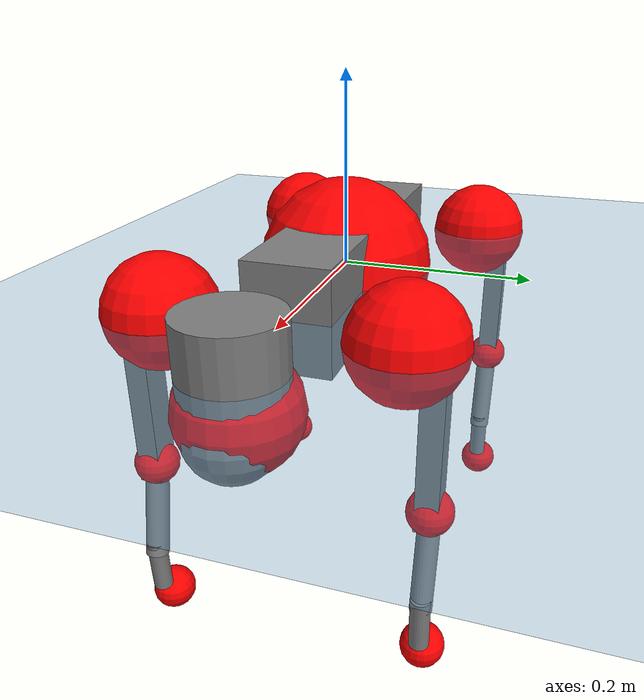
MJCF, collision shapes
<mujoco model="go2">
  <compiler angle="radian" assetdir="assets" balanceinertia="true" inertiafromgeom="false"/>

  <option timestep="0.005" density="1.2" viscosity="2e-05"/>

  <size nkey="1"/>

  <visual>
    <quality shadowsize="8192"/>
    <map shadowclip="0.5"/>
  </visual>

  <default>
    <default class="/">
      <geom contype="0" conaffinity="0" group="1" solref="-1000 -80"/>
      <site size="0.01 0.005 0.005" group="5"/>
      <general forcelimited="true" biastype="affine" gainprm="20" biasprm="0 -20 -0.5"/>
      <default class="go2">
        <joint armature="0.01" damping="0.01" frictionloss="0.2"/>
        <geom condim="1" margin="0.001"/>
        <default class="visual">
          <geom type="mesh" group="2"/>
        </default>
        <default class="collision">
          <geom group="3"/>
          <default class="foot">
            <geom size="0.022 0 0" condim="6" priority="1" friction="0.8 0.02 0.01" solimp="0.015 1 0.022"/>
          </default>
        </default>
        <default class="reward_collision_sphere">
          <geom group="5" rgba="1 0 0 1"/>
        </default>
      </default>
    </default>
  </default>

  <asset>
    <texture type="skybox" colorspace="auto" name="//unnamed_texture_0" builtin="gradient" rgb1="0.95 0.95 0.95" rgb2="0.95 0.95 0.95" width="100" height="600"/>
    <texture type="2d" colorspace="auto" name="texplane" builtin="checker" rgb1="0.345 0.575 0.748" rgb2="0.345 0.575 0.748" markrgb="1 1 1" width="512" height="512"/>
    <material name="MatPlane" class="/" texture="texplane" texuniform="true" texrepeat="2 2" specular="0.9"/>
    <material name="metal" class="/" rgba="0.9 0.95 0.95 1"/>
    <material name="black" class="/" rgba="0 0 0 1"/>
    <material name="white" class="/"/>
    <material name="gray" class="/" rgba="0.671705 0.692426 0.77427 1"/>
    <mesh name="base_0" class="/" file="base_0.obj"/>
    <mesh name="base_1" class="/" file="base_1.obj"/>
    <mesh name="base_2" class="/" file="base_2.obj"/>
    <mesh name="base_3" class="/" file="base_3.obj"/>
    <mesh name="base_4" class="/" file="base_4.obj"/>
    <mesh name="hip_0" class="/" file="hip_0.obj"/>
    <mesh name="hip_1" class="/" file="hip_1.obj"/>
    <mesh name="thigh_0" class="/" file="thigh_0.obj"/>
    <mesh name="thigh_1" class="/" file="thigh_1.obj"/>
    <mesh name="thigh_mirror_0" class="/" file="thigh_mirror_0.obj"/>
    <mesh name="thigh_mirror_1" class="/" file="thigh_mirror_1.obj"/>
    <mesh name="calf_0" class="/" file="calf_0.obj"/>
    <mesh name="calf_1" class="/" file="calf_1.obj"/>
    <mesh name="calf_mirror_0" class="/" file="calf_mirror_0.obj"/>
    <mesh name="calf_mirror_1" class="/" file="calf_mirror_1.obj"/>
    <mesh name="foot" class="/" file="foot.obj"/>
  </asset>

  <worldbody>
    <geom name="floor" class="/" size="100 100 0.125" type="plane" group="0" material="MatPlane"/>
    <light name="toplight_shadow" class="/" pos="0 0 5" dir="0.0990148 0.0990148 -0.990148" type="directional" ambient="0.04 0.04 0.04" diffuse="0.55 0.55 0.55" specular="0.12 0.12 0.12"/>
    <light name="toplight_fill" class="/" pos="0 0 5" dir="0.0990148 0.0990148 -0.990148" type="directional" castshadow="false" ambient="0.04 0.04 0.04" diffuse="0.3 0.3 0.3" specular="0.08 0.08 0.08"/>
    <body name="trunk" childclass="go2" pos="0.000917504 0.000223836 -0.00102213" quat="1 -0.000230072 -6.85996e-05 0.000246976">
      <inertial pos="0.0182356 -0.00204671 -0.00349896" quat="0.00100485 0.714694 0.000892405 0.699436" mass="5.8612" diaginertia="0.104847 0.102237 0.0082343"/>
      <joint name="//unnamed_joint_0" type="free" armature="0" damping="0" frictionloss="0"/>
      <geom name="//unnamed_geom_1" class="visual" material="black" mesh="base_0"/>
      <geom name="//unnamed_geom_2" class="visual" material="black" mesh="base_1"/>
      <geom name="//unnamed_geom_3" class="visual" material="black" mesh="base_2"/>
      <geom name="//unnamed_geom_4" class="visual" material="white" mesh="base_3"/>
      <geom name="//unnamed_geom_5" class="visual" material="gray" mesh="base_4"/>
      <geom name="trunk_1" class="collision" size="0.175873 0.0437111 0.0532948" type="box"/>
      <geom name="trunk_2" class="collision" size="0.0467498 0.0420748" pos="0.283374 0 0.00804266" type="cylinder"/>
      <geom name="trunk_3" class="collision" size="0.0439448" pos="0.291328 0 -0.0482559"/>
      <geom name="//unnamed_geom_9" class="reward_collision_sphere" size="0.0934996"/>
      <geom name="//unnamed_geom_10" class="reward_collision_sphere" size="0.0560998" pos="0.278402 0 -0.0361919"/>
      <site name="imu" pos="-0.0140735 -0.000592979 0.0227543" size="0.00934996"/>
      <camera name="track" pos="0 -2.01286 0" quat="0.707107 0.707107 0 0" mode="trackcom"/>
      <camera name="ego_camera" pos="0.310219 0 0.0361919" quat="-0.5 -0.5 0.5 0.5"/>
      <body name="FL_hip" pos="0.190198 0.0454686 0.000673892" quat="1 -2.38289e-05 -9.64533e-05 3.26698e-05">
        <inertial pos="-0.00522099 0.00116682 -0.000695764" quat="0.497248 0.499646 0.505099 0.49797" mass="0.534244" diaginertia="0.000828263 0.000584019 0.000156562"/>
        <joint name="FL_hip_joint" pos="0 0 0" axis="1 -0.000346877 -6.62873e-05" range="-1.04999 1.03247" armature="0.00945084" damping="0.0044784" frictionloss="0.181152"/>
        <geom name="//unnamed_geom_11" class="visual" material="metal" mesh="hip_0"/>
        <geom name="//unnamed_geom_12" class="visual" material="gray" mesh="hip_1"/>
        <geom name="//unnamed_geom_13" class="collision" size="0.0430098 0.0186999" pos="0 0.0805144 0" quat="0.707107 0.707107 0 0" type="cylinder"/>
        <geom name="//unnamed_geom_14" class="reward_collision_sphere" size="0.0560998" pos="0 0.0704501 0"/>
        <body name="FL_thigh" pos="-0.000900297 0.0979411 0.00181202" quat="0.999999 -0.000521448 -9.32544e-05 0.000875311">
          <inertial pos="-0.00377926 -0.022351 -0.0263212" quat="0.830812 0.090727 -0.0209182 0.54871" mass="0.92516" diaginertia="0.00575222 0.00580428 0.00028994"/>
          <joint name="FL_thigh_joint" pos="0 0 0" axis="-0.00619263 0.999951 0.00772416" stiffness="0.00393022" range="-1.5279 3.50438" armature="0.00978374" damping="0.0115687" frictionloss="0.186989"/>
          <geom name="//unnamed_geom_15" class="visual" material="metal" mesh="thigh_0"/>
          <geom name="//unnamed_geom_16" class="visual" material="gray" mesh="thigh_1"/>
          <geom name="//unnamed_geom_17" class="collision" size="0.0995771 0.0114537 0.0158949" pos="0 0 -0.0856543" quat="0.707107 0 0.707107 0" type="box"/>
          <body name="FL_calf" pos="-0.000695473 0.000938712 -0.171192" quat="1 -0.000151724 -5.89099e-05 0.000122637">
            <inertial pos="0.00669125 -0.00123154 -0.112874" quat="0.710411 0.00122194 -0.00564468 0.703763" mass="0.197649" diaginertia="0.00142251 0.00152609 1.78133e-05"/>
            <joint name="FL_calf_joint" pos="0 0 0" axis="-0.00412186 0.999981 0.00468544" range="-2.71384 -0.843948" armature="0.00888552" damping="0.00138358" frictionloss="0.184078"/>
            <geom name="//unnamed_geom_18" class="visual" material="gray" mesh="calf_0"/>
            <geom name="//unnamed_geom_19" class="visual" material="black" mesh="calf_1"/>
            <geom name="FL_calf0" class="collision" size="0.01122 0.0560998" pos="0.00795434 0 -0.0482559" quat="0.994493 0 -0.104807 0" type="cylinder"/>
            <geom name="//unnamed_geom_21" class="collision" size="0.010285 0.0303874" pos="0.0198859 0 -0.119031" quat="0.999688 0 0.0249974 0" type="cylinder"/>
            <geom name="//unnamed_geom_22" class="visual" pos="0 0 -0.171309" quat="1 0 0 0" material="black" mesh="foot"/>
            <geom name="FL_foot" class="foot" size="0.0172349" pos="-0.00198859 0 -0.171309"/>
            <geom name="//unnamed_geom_24" class="reward_collision_sphere" size="0.0233749"/>
            <geom name="//unnamed_geom_25" class="reward_collision_sphere" size="0.0233749" pos="-0.00198859 0 -0.171309"/>
            <site name="FL_foot" class="foot" pos="-0.00198859 0 -0.171309" size="0.00934996"/>
          </body>
        </body>
      </body>
      <body name="FR_hip" pos="0.19057 -0.0477579 0.000841434" quat="1 -3.80347e-05 1.6585e-05 2.88528e-05">
        <inertial pos="-0.00546305 -0.00435524 -0.0009941" quat="0.504311 0.506826 0.501984 0.486632" mass="0.549066" diaginertia="0.000841252 0.000631071 0.000158707"/>
        <joint name="FR_hip_joint" pos="0 0 0" axis="0.99994 0.00947603 -0.00545194" range="-1.05648 1.05557" armature="0.00937791" damping="0.00247669" frictionloss="0.177912"/>
        <geom name="//unnamed_geom_26" class="visual" pos="0 1.76117e-09 7.55403e-08" quat="4.63268e-05 1 0 0" material="metal" mesh="hip_0"/>
        <geom name="//unnamed_geom_27" class="visual" pos="0 2.85507e-09 -1.8684e-07" quat="4.63268e-05 1 0 0" material="gray" mesh="hip_1"/>
        <geom name="//unnamed_geom_28" class="collision" size="0.0430098 0.0186999" pos="0 -0.0805144 0" quat="0.707107 0.707107 0 0" type="cylinder"/>
        <geom name="//unnamed_geom_29" class="reward_collision_sphere" size="0.0560998" pos="0 -0.0704501 0"/>
        <body name="FR_thigh" pos="0.000295355 -0.0967787 -0.00166572" quat="1 0.000412655 -0.000791791 0.000220392">
          <inertial pos="-0.00133835 0.0235579 -0.0262588" quat="0.55144 -0.0204035 0.0852752 0.829593" mass="0.963428" diaginertia="0.005784 0.00593511 0.000305807"/>
          <joint name="FR_thigh_joint" pos="0 0 0" axis="0.00229445 -0.999994 0.00258476" range="-3.51206 1.58388" armature="0.00913411" damping="0.00916343" frictionloss="0.17959"/>
          <geom name="//unnamed_geom_30" class="visual" material="metal" mesh="thigh_mirror_0"/>
          <geom name="//unnamed_geom_31" class="visual" material="gray" mesh="thigh_mirror_1"/>
          <geom name="//unnamed_geom_32" class="collision" size="0.0995771 0.0114537 0.0158949" pos="0 0 -0.0856543" quat="0.707107 0 0.707107 0" type="box"/>
          <body name="FR_calf" pos="1.99812e-05 4.97908e-05 -0.170134" quat="1 -2.01408e-05 5.33934e-05 -4.50457e-05">
            <inertial pos="0.00496901 0.000774746 -0.114124" quat="0.698174 -0.0143119 0.00174214 0.715783" mass="0.200976" diaginertia="0.00145788 0.00155003 1.81924e-05"/>
            <joint name="FR_calf_joint" pos="0 0 0" axis="0.00112055 -0.999999 -0.000123474" range="0.790265 2.7203" armature="0.0101256" damping="0.019274" frictionloss="0.180759"/>
            <geom name="//unnamed_geom_33" class="visual" material="gray" mesh="calf_mirror_0"/>
            <geom name="//unnamed_geom_34" class="visual" material="black" mesh="calf_mirror_1"/>
            <geom name="FR_calf0" class="collision" size="0.0121549 0.0560998" pos="0.00994293 0 -0.0482559" quat="0.995004 0 -0.0998334 0" type="cylinder"/>
            <geom name="//unnamed_geom_36" class="collision" size="0.010285 0.0303874" pos="0.0198859 0 -0.119031" quat="0.999688 0 0.0249974 0" type="cylinder"/>
            <geom name="//unnamed_geom_37" class="visual" pos="0 0 -0.171309" quat="1 0 0 0" material="black" mesh="foot"/>
            <geom name="FR_foot" class="foot" size="0.0215079" pos="-0.00198859 0 -0.171309"/>
            <geom name="//unnamed_geom_39" class="reward_collision_sphere" size="0.0233749"/>
            <geom name="//unnamed_geom_40" class="reward_collision_sphere" size="0.0233749" pos="-0.00198859 0 -0.171309"/>
            <site name="FR_foot" class="foot" pos="-0.00198859 0 -0.171309" size="0.00934996"/>
          </body>
        </body>
      </body>
      <body name="RL_hip" pos="-0.190221 0.04672 -0.00279424" quat="1 5.92198e-05 -4.27235e-05 0.000293996">
        <inertial pos="0.00542721 0.00298208 -0.00209168" quat="0.50721 0.503466 0.493515 0.495685" mass="0.569776" diaginertia="0.000912777 0.000639036 0.000166667"/>
        <joint name="RL_hip_joint" pos="0 0 0" axis="-0.99986 -0.000333776 -0.0167076" stiffness="0.00251073" range="-1.04189 1.02626" armature="0.00922344" damping="0" frictionloss="0.18581"/>
        <geom name="//unnamed_geom_41" class="visual" pos="-1.65544e-09 0 -3.24505e-07" quat="4.63268e-05 0 1 0" material="metal" mesh="hip_0"/>
        <geom name="//unnamed_geom_42" class="visual" pos="-2.68367e-09 0 -2.87789e-07" quat="4.63268e-05 0 1 0" material="gray" mesh="hip_1"/>
        <geom name="//unnamed_geom_43" class="collision" size="0.0430098 0.0186999" pos="0 0.0805144 0" quat="0.707107 0.707107 0 0" type="cylinder"/>
        <geom name="//unnamed_geom_44" class="reward_collision_sphere" size="0.0560998" pos="0 0.0704501 0"/>
        <body name="RL_thigh" pos="-0.000153077 0.0971942 -0.000316885" quat="1 0.00036858 -0.000130413 0.000318533">
          <inertial pos="-0.00616456 -0.023324 -0.0287964" quat="0.829365 0.0853597 -0.0215798 0.551727" mass="0.94132" diaginertia="0.00553881 0.00602938 0.000288909"/>
          <joint name="RL_thigh_joint" pos="0 0 0" axis="-0.00845895 0.99996 0.00304985" stiffness="0.0138225" range="-0.514748 4.52474" armature="0.00908826" damping="0" frictionloss="0.187256"/>
          <geom name="//unnamed_geom_45" class="visual" material="metal" mesh="thigh_0"/>
          <geom name="//unnamed_geom_46" class="visual" material="gray" mesh="thigh_1"/>
          <geom name="//unnamed_geom_47" class="collision" size="0.0995771 0.0114537 0.0158949" pos="0 0 -0.0856543" quat="0.707107 0 0.707107 0" type="box"/>
          <body name="RL_calf" pos="0.000832689 -0.000676997 -0.170261" quat="1 9.55207e-06 5.27084e-05 -4.12798e-05">
            <inertial pos="0.00587034 0.00157863 -0.112546" quat="0.710463 0.00331193 -0.00404804 0.703715" mass="0.203871" diaginertia="0.00148157 0.00159682 1.82149e-05"/>
            <joint name="RL_calf_joint" pos="0 0 0" axis="-0.00513336 0.999895 -0.0135276" range="-2.68408 -0.855104" armature="0.010395" damping="0.0122731" frictionloss="0.171546"/>
            <geom name="//unnamed_geom_48" class="visual" material="gray" mesh="calf_0"/>
            <geom name="//unnamed_geom_49" class="visual" material="black" mesh="calf_1"/>
            <geom name="RL_calf0" class="collision" size="0.0121549 0.0560998" pos="0.00994293 0 -0.0482559" quat="0.995004 0 -0.0998334 0" type="cylinder"/>
            <geom name="//unnamed_geom_51" class="collision" size="0.010285 0.0303874" pos="0.0198859 0 -0.119031" quat="0.999688 0 0.0249974 0" type="cylinder"/>
            <geom name="//unnamed_geom_52" class="visual" pos="0 0 -0.171309" quat="1 0 0 0" material="black" mesh="foot"/>
            <geom name="RL_foot" class="foot" size="0.0179348" pos="-0.00198859 0 -0.171309"/>
            <geom name="//unnamed_geom_54" class="reward_collision_sphere" size="0.0233749"/>
            <geom name="//unnamed_geom_55" class="reward_collision_sphere" size="0.0233749" pos="-0.00198859 0 -0.171309"/>
            <site name="RL_foot" class="foot" pos="-0.00198859 0 -0.171309" size="0.00934996"/>
          </body>
        </body>
      </body>
      <body name="RR_hip" pos="-0.189791 -0.0473728 -0.00218577" quat="1 -6.05964e-05 -0.000172042 -2.44951e-05">
        <inertial pos="0.00510018 -0.00210322 -0.00249886" quat="0.502749 0.486327 0.504387 0.506283" mass="0.547888" diaginertia="0.000833725 0.000593492 0.000156419"/>
        <joint name="RR_hip_joint" pos="0 0 0" axis="-0.999932 0.00593706 -0.010011" stiffness="0.00308913" range="-1.08693 1.03887" armature="0.0097206" damping="0.00617601" frictionloss="0.18772"/>
        <geom name="//unnamed_geom_56" class="visual" pos="1.65586e-09 1.76117e-09 -4.00045e-07" quat="2.14617e-09 4.63268e-05 4.63268e-05 -1" material="metal" mesh="hip_0"/>
        <geom name="//unnamed_geom_57" class="visual" pos="2.68263e-09 2.85507e-09 -1.00949e-07" quat="2.14617e-09 4.63268e-05 4.63268e-05 -1" material="gray" mesh="hip_1"/>
        <geom name="//unnamed_geom_58" class="collision" size="0.0430098 0.0186999" pos="0 -0.0805144 0" quat="0.707107 0.707107 0 0" type="cylinder"/>
        <geom name="//unnamed_geom_59" class="reward_collision_sphere" size="0.0560998" pos="0 -0.0704501 0"/>
        <body name="RR_thigh" pos="0.00249183 -0.0965984 -0.0019095" quat="1 -0.000303498 -0.000793782 -0.00016388">
          <inertial pos="-0.00374872 0.022583 -0.0272569" quat="0.552133 -0.0192903 0.0850556 0.829182" mass="0.923135" diaginertia="0.00566479 0.00596205 0.000293574"/>
          <joint name="RR_thigh_joint" pos="0 0 0" axis="0.00499277 -0.999984 0.00283761" stiffness="0.00106312" range="-4.53615 0.546257" armature="0.00948984" damping="0.0107029" frictionloss="0.187303"/>
          <geom name="//unnamed_geom_60" class="visual" material="metal" mesh="thigh_mirror_0"/>
          <geom name="//unnamed_geom_61" class="visual" material="gray" mesh="thigh_mirror_1"/>
          <geom name="//unnamed_geom_62" class="collision" size="0.0995771 0.0114537 0.0158949" pos="0 0 -0.0856543" quat="0.707107 0 0.707107 0" type="box"/>
          <body name="RR_calf" pos="-0.000611855 0.00174255 -0.170872" quat="0.999999 0.000347552 -0.000811696 0.000625433">
            <inertial pos="0.00758892 0.0013057 -0.114801" quat="0.701615 -0.00793381 -0.00331667 0.712505" mass="0.201122" diaginertia="0.00145899 0.00151256 1.80355e-05"/>
            <joint name="RR_calf_joint" pos="0 0 0" axis="-0.00392967 -0.999992 0.000720479" range="0.841671 2.76929" armature="0.00931132" damping="0.0174971" frictionloss="0.180242"/>
            <geom name="//unnamed_geom_63" class="visual" material="gray" mesh="calf_mirror_0"/>
            <geom name="//unnamed_geom_64" class="visual" material="black" mesh="calf_mirror_1"/>
            <geom name="RR_calf0" class="collision" size="0.0121549 0.0560998" pos="0.00994293 0 -0.0482559" quat="0.995004 0 -0.0998334 0" type="cylinder"/>
            <geom name="//unnamed_geom_66" class="collision" size="0.010285 0.0303874" pos="0.0198859 0 -0.119031" quat="0.999688 0 0.0249974 0" type="cylinder"/>
            <geom name="//unnamed_geom_67" class="visual" pos="0 0 -0.171309" quat="1 0 0 0" material="black" mesh="foot"/>
            <geom name="RR_foot" class="foot" size="0.0212982" pos="-0.00198859 0 -0.171309"/>
            <geom name="//unnamed_geom_69" class="reward_collision_sphere" size="0.0233749"/>
            <geom name="//unnamed_geom_70" class="reward_collision_sphere" size="0.0233749" pos="-0.00198859 0 -0.171309"/>
            <site name="RR_foot" class="foot" pos="-0.00198859 0 -0.171309" size="0.00934996"/>
          </body>
        </body>
      </body>
    </body>
  </worldbody>

  <contact>
    <pair class="/" geom1="floor" geom2="FL_foot" name="//unnamed_contact_0"/>
    <pair class="/" geom1="floor" geom2="FR_foot" name="//unnamed_contact_1"/>
    <pair class="/" geom1="floor" geom2="RL_foot" name="//unnamed_contact_2"/>
    <pair class="/" geom1="floor" geom2="RR_foot" name="//unnamed_contact_3"/>
  </contact>

  <actuator>
    <general name="FL_hip" class="/" joint="FL_hip_joint" forcerange="-20.9404 20.9404" gainprm="18.8236" biasprm="0 -18.8236 -0.468195"/>
    <general name="FL_thigh" class="/" joint="FL_thigh_joint" forcerange="-20.2098 20.2098" gainprm="18.8236" biasprm="0 -18.8236 -0.468195"/>
    <general name="FL_calf" class="/" joint="FL_calf_joint" forcerange="-43.9115 43.9115" gainprm="18.8236" biasprm="0 -18.8236 -0.468195"/>
    <general name="FR_hip" class="/" joint="FR_hip_joint" forcerange="-22.0484 22.0484" gainprm="18.8236" biasprm="0 -18.8236 -0.468195"/>
    <general name="FR_thigh" class="/" joint="FR_thigh_joint" forcerange="-22.8553 22.8553" gainprm="18.8236" biasprm="0 -18.8236 -0.468195"/>
    <general name="FR_calf" class="/" joint="FR_calf_joint" forcerange="-43.0732 43.0732" gainprm="18.8236" biasprm="0 -18.8236 -0.468195"/>
    <general name="RL_hip" class="/" joint="RL_hip_joint" forcerange="-22.2257 22.2257" gainprm="18.8236" biasprm="0 -18.8236 -0.468195"/>
    <general name="RL_thigh" class="/" joint="RL_thigh_joint" forcerange="-21.3439 21.3439" gainprm="18.8236" biasprm="0 -18.8236 -0.468195"/>
    <general name="RL_calf" class="/" joint="RL_calf_joint" forcerange="-40.9614 40.9614" gainprm="18.8236" biasprm="0 -18.8236 -0.468195"/>
    <general name="RR_hip" class="/" joint="RR_hip_joint" forcerange="-22.0978 22.0978" gainprm="18.8236" biasprm="0 -18.8236 -0.468195"/>
    <general name="RR_thigh" class="/" joint="RR_thigh_joint" forcerange="-23.7164 23.7164" gainprm="18.8236" biasprm="0 -18.8236 -0.468195"/>
    <general name="RR_calf" class="/" joint="RR_calf_joint" forcerange="-41.0509 41.0509" gainprm="18.8236" biasprm="0 -18.8236 -0.468195"/>
  </actuator>

  <sensor>
    <gyro site="imu" name="imu_angular_velocity"/>
    <velocimeter site="imu" name="imu_linear_velocity"/>
    <framelinvel objtype="site" objname="FL_foot" name="FL_foot_global_linear_velocity"/>
    <framelinvel objtype="site" objname="FR_foot" name="FR_foot_global_linear_velocity"/>
    <framelinvel objtype="site" objname="RL_foot" name="RL_foot_global_linear_velocity"/>
    <framelinvel objtype="site" objname="RR_foot" name="RR_foot_global_linear_velocity"/>
  </sensor>

  <keyframe>
    <key name="home" qpos="0 0 0.325 1 0 0 0 0.1 0.8 -1.5 -0.1 -0.8 1.5 -0.1 0.8 -1.5 0.1 -0.8 1.5"/>
  </keyframe>
</mujoco>
